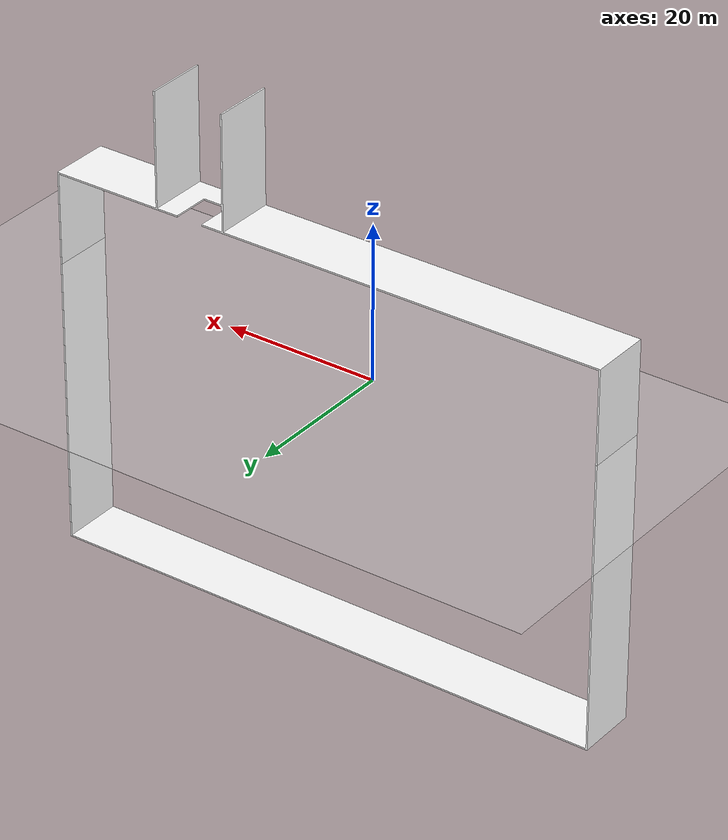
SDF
<?xml version="1.0" ?>
<sdf version="1.7">
  <world name="terrain_test">

    <!-- Sun light -->
    <light name="sun" type="directional">
      <cast_shadows>true</cast_shadows>
      <pose>0 0 10 0 0 0</pose>
      <diffuse>0.8 0.8 0.8 1</diffuse>
      <specular>0.2 0.2 0.2 1</specular>
      <attenuation>
        <range>1000</range>
        <constant>0.9</constant>
        <linear>0.01</linear>
        <quadratic>0.001</quadratic>
      </attenuation>
      <direction>-0.5 0.1 -0.9</direction>
    </light>

    <!-- Scene display settings -->
    <scene>
      <ambient>0.7 0.7 0.7 1</ambient>
      <background>0.7 0.8 0.9 1</background>
      <shadows>true</shadows>
      <grid>false</grid>
    </scene>

    <!-- Ground plane -->
    <model name="large_ground_plane">
      <static>true</static>
      <link name="link">
        <collision name="collision">
          <geometry>
            <plane>
              <normal>0 0 1</normal>
              <size>200 200</size>
            </plane>
          </geometry>
        </collision>

        <visual name="visual">
          <geometry>
            <plane>
              <normal>0 0 1</normal>
              <size>200 200</size>
            </plane>
          </geometry>
          <material>
            <ambient>0.85 0.85 0.85 1</ambient>
            <diffuse>0.85 0.85 0.85 1</diffuse>
          </material>
        </visual>
      </link>
    </model>

    <!-- Initial camera view: using your saved Gazebo view -->
    <gui fullscreen="0">
      <camera name="user_camera">
        <pose>273.544 10.8069 96.4346 -0 0.378 3.11518</pose>
        <view_controller>orbit</view_controller>
        <projection_type>perspective</projection_type>
      </camera>
    </gui>

    <!-- Gravity -->
    <gravity>0 0 -9.8</gravity>

    <!-- Physics -->
    <physics name="default_physics" default="true" type="ode">
      <max_step_size>0.001</max_step_size>
      <real_time_factor>1.0</real_time_factor>
      <real_time_update_rate>1000</real_time_update_rate>
    </physics>

    <!-- Factory model -->
 <include>
  <name>factory</name>
  <uri>model://factory</uri>
  <pose>0 0 0 1.5708 0 0</pose>
</include>

  </world>
</sdf>

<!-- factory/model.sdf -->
<sdf version="1.8">
  <model name="factory">
    <plugin filename="gz-sim-label-system" name="gz::sim::systems::Label">
      <label>2</label>
    </plugin>
    <static>true</static>
    <link name="building">
      <visual name="visual">
        <geometry>
          <mesh>
            <uri>model://factory/meshes/factory_with_entrence.dae</uri>
          </mesh>
        </geometry>
      </visual>
      <collision name="collision">
        <geometry>
          <mesh>
            <uri>model://factory/meshes/factory_with_entrence.dae</uri>
          </mesh>
        </geometry>
      </collision>

    </link>
    <plugin name="gz::sim::systems::Label" filename="gz-sim-label-system">
      <label>2</label>
    </plugin>
  </model>
</sdf>
